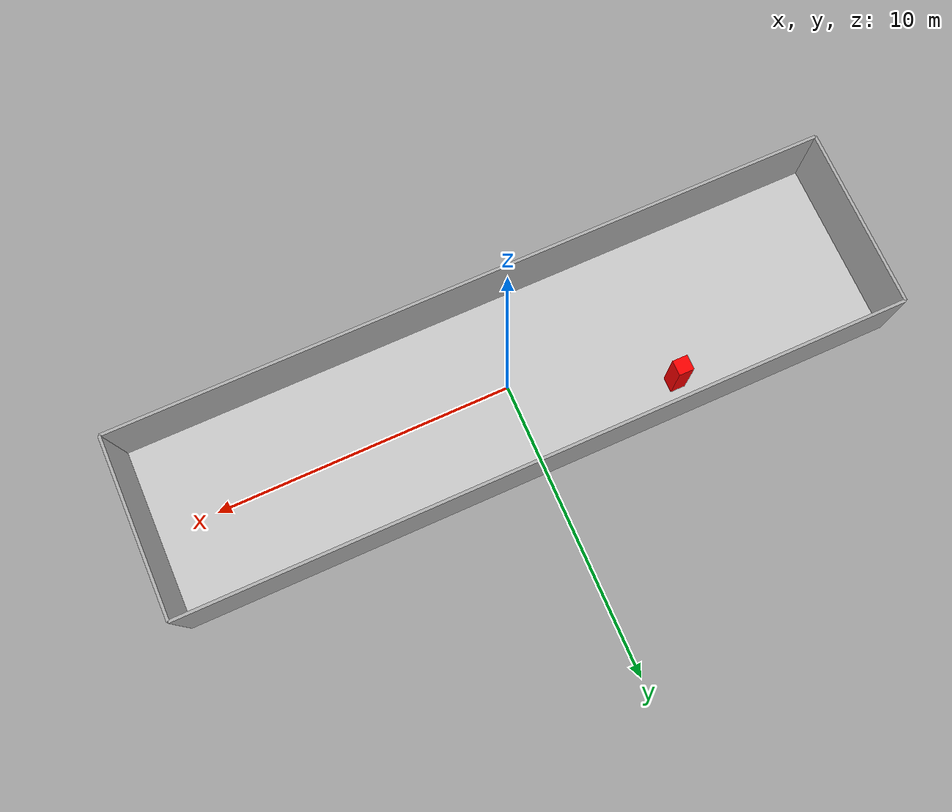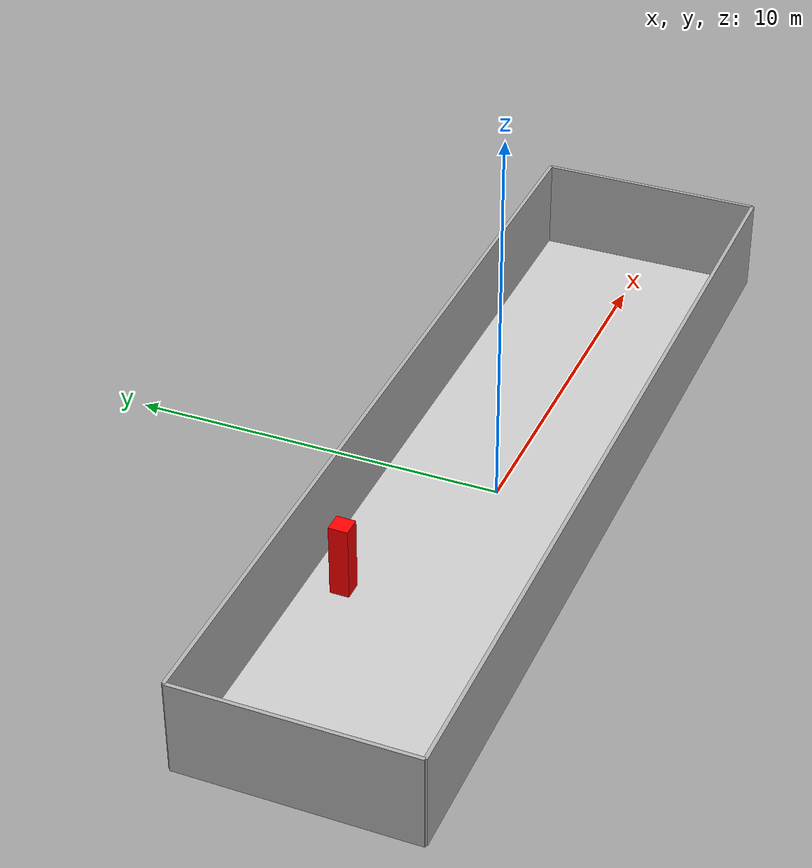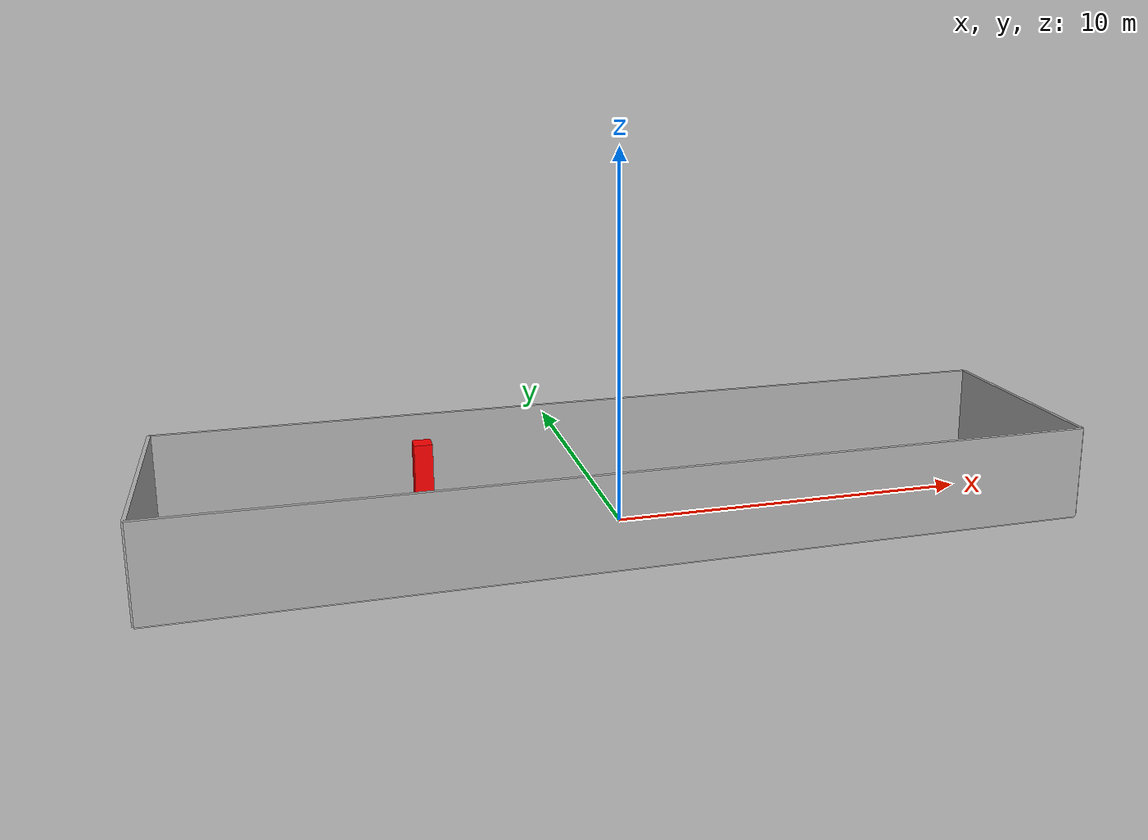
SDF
<?xml version="1.0" ?>
<sdf version='1.7'>
  <world name='room'>
    <plugin name="link_state_publisher" filename="liblink_state_publisher.so"/>
    <plugin name="gazebo_ros_state" filename="libgazebo_ros_state.so">
      <ros>
        <namespace>/gazebo</namespace>
      </ros>
      <update_rate>10.0</update_rate>
    </plugin>

    <!-- Light -->
    <light name='sun' type='directional'>
      <cast_shadows>1</cast_shadows>
      <pose>0 0 10 0 -0 0</pose>
      <diffuse>0.8 0.8 0.8 1</diffuse>
      <specular>0.2 0.2 0.2 1</specular>
      <attenuation>
        <range>1000</range>
        <constant>0.9</constant>
        <linear>0.01</linear>
        <quadratic>0.001</quadratic>
      </attenuation>
      <direction>-0.5 0.1 -0.9</direction>
    </light>

    <gravity>0 0 -9.8</gravity>
    <magnetic_field>6e-06 2.3e-05 -4.2e-05</magnetic_field>
    <atmosphere type='adiabatic'/>
    <physics type='ode'>
      <max_step_size>0.002</max_step_size>
      <real_time_factor>1</real_time_factor>
      <real_time_update_rate>500</real_time_update_rate>
    </physics>

    <scene>
      <ambient>0.4 0.4 0.4 1</ambient>
      <background>0.7 0.7 0.7 1</background>
      <shadows>1</shadows>
    </scene>

    <wind/>
    <spherical_coordinates>
      <surface_model>EARTH_WGS84</surface_model>
      <latitude_deg>0</latitude_deg>
      <longitude_deg>0</longitude_deg>
      <elevation>0</elevation>
      <heading_deg>0</heading_deg>
    </spherical_coordinates>

    <!-- A Landmark Box -->
    <model name='landmark_box'>
      <pose>-5 2 1 0 0 0</pose> <static>true</static>
      <link name='link'>
        <collision name='collision'>
          <geometry>
            <box>
              <size>0.5 0.5 2</size>
            </box>
          </geometry>
        </collision>
        <visual name='visual'>
          <geometry>
            <box>
              <size>0.5 0.5 2</size>
            </box>
          </geometry>
          <material>
            <ambient>1 0 0 1</ambient>
            <diffuse>1 0 0 1</diffuse>
          </material>
        </visual>
      </link>
    </model>

    <!-- Long Narrow Room: 24m x 6m -->
    <model name='room'>
      <static>true</static>

      <!-- Floor -->
      <link name='floor'>
        <pose>0 0 0 0 0 0</pose>
        <collision name='floor_collision'>
          <geometry>
            <box>
              <size>24 6 0.1</size>
            </box>
          </geometry>
        </collision>
        <visual name='floor_visual'>
          <geometry>
            <box>
              <size>24 6 0.1</size>
            </box>
          </geometry>
          <material>
            <ambient>0.8 0.8 0.8 1</ambient>
            <diffuse>0.8 0.8 0.8 1</diffuse>
          </material>
        </visual>
      </link>

      <!-- North wall -->
      <link name='wall_north'>
        <pose>0 3 1.25 0 0 0</pose>
        <collision name='north_collision'>
          <geometry>
            <box>
              <size>24 0.1 2.5</size>
            </box>
          </geometry>
        </collision>
        <visual name='north_visual'>
          <geometry>
            <box>
              <size>24 0.1 2.5</size>
            </box>
          </geometry>
          <material>
            <ambient>0.7 0.7 0.7 1</ambient>
            <diffuse>0.7 0.7 0.7 1</diffuse>
          </material>
        </visual>
      </link>

      <!-- South wall -->
      <link name='wall_south'>
        <pose>0 -3 1.25 0 0 0</pose>
        <collision name='south_collision'>
          <geometry>
            <box>
              <size>24 0.1 2.5</size>
            </box>
          </geometry>
        </collision>
        <visual name='south_visual'>
          <geometry>
            <box>
              <size>24 0.1 2.5</size>
            </box>
          </geometry>
          <material>
            <ambient>0.7 0.7 0.7 1</ambient>
            <diffuse>0.7 0.7 0.7 1</diffuse>
          </material>
        </visual>
      </link>

      <!-- East wall -->
      <link name='wall_east'>
        <pose>12 0 1.25 0 0 0</pose>
        <collision name='east_collision'>
          <geometry>
            <box>
              <size>0.1 6 2.5</size>
            </box>
          </geometry>
        </collision>
        <visual name='east_visual'>
          <geometry>
            <box>
              <size>0.1 6 2.5</size>
            </box>
          </geometry>
          <material>
            <ambient>0.7 0.7 0.7 1</ambient>
            <diffuse>0.7 0.7 0.7 1</diffuse>
          </material>
        </visual>
      </link>

      <!-- West wall -->
      <link name='wall_west'>
        <pose>-12 0 1.25 0 0 0</pose>
        <collision name='west_collision'>
          <geometry>
            <box>
              <size>0.1 6 2.5</size>
            </box>
          </geometry>
        </collision>
        <visual name='west_visual'>
          <geometry>
            <box>
              <size>0.1 6 2.5</size>
            </box>
          </geometry>
          <material>
            <ambient>0.7 0.7 0.7 1</ambient>
            <diffuse>0.7 0.7 0.7 1</diffuse>
          </material>
        </visual>
      </link>

    </model>

    <!-- GUI camera -->
    <gui fullscreen='0'>
      <camera name='user_camera'>
        <pose>-10 8 6 0 0.6 -0.8</pose>
        <view_controller>orbit</view_controller>
        <projection_type>perspective</projection_type>
      </camera>
    </gui>

  </world>
</sdf>
